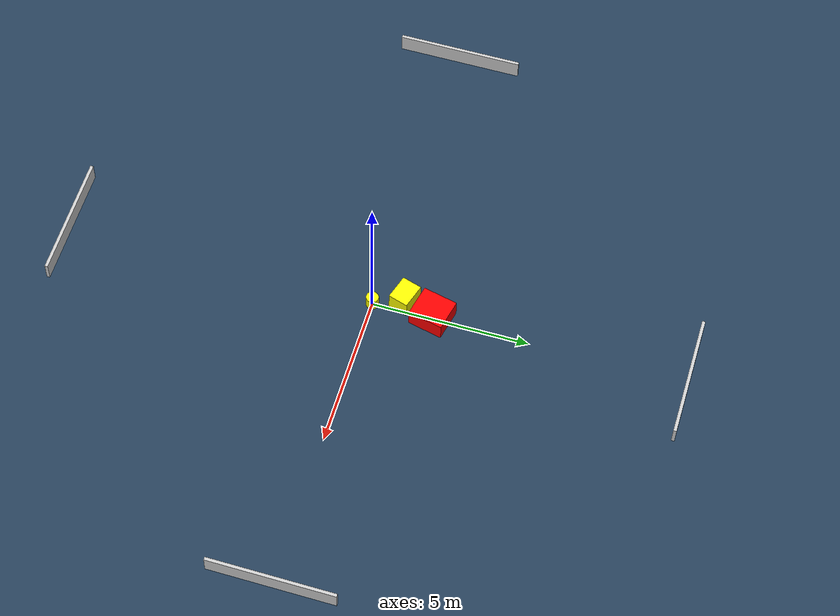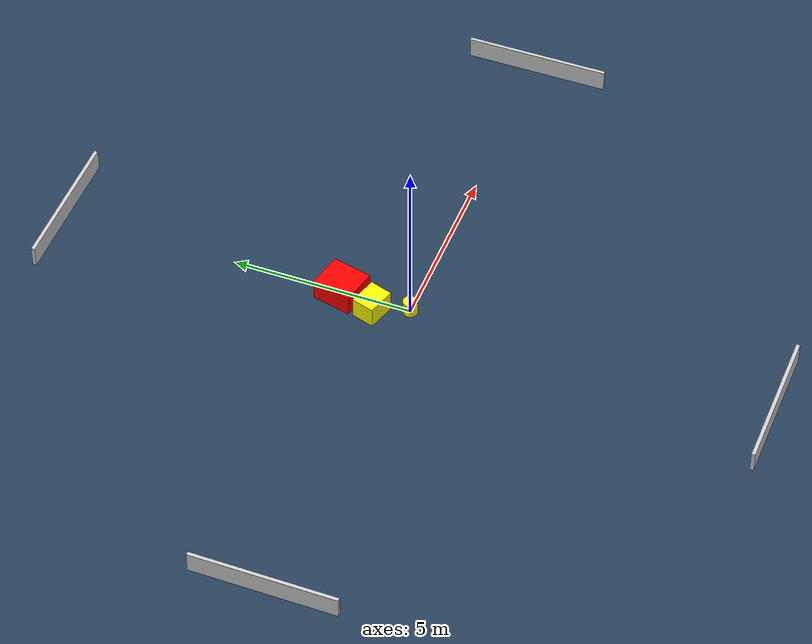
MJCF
<?xml version="1.0" ?>
<mujoco model="generated_environment">
  <option timestep="0.01" integrator="RK4" cone="elliptic"/>
  <default>
    <geom density="1"/>
  </default>
  <asset>
    <texture builtin="gradient" height="3072" name="skybox" rgb1="0.3 0.5 0.7" rgb2="0 0 0" type="skybox" width="512"/>
    <texture builtin="checker" height="300" name="groundplane" rgb1="0.2 0.3 0.4" rgb2="0.1 0.2 0.3" type="2d" width="300"/>
    <material name="groundplane" reflectance="0.2" texrepeat="5 5" texture="groundplane"/>
  </asset>
  <worldbody>
    <light dir="0 0 -1" directional="true" pos="0 0 1.5"/>
    <geom condim="3" friction="0.5 0.005 0.001" material="groundplane" name="floor" pos="0 0 0" size="0 0 0.05" type="plane"/>
    <body name="walls">
      <geom name="wall_1" condim="4" pos="-10.0 0.0 0.3" rgba="0.800000011920929 0.800000011920929 0.800000011920929 1.0" size="0.05 2.0 0.3" type="box"/>
      <geom name="wall_2" condim="4" pos="10.0 0.0 0.3" rgba="0.800000011920929 0.800000011920929 0.800000011920929 1.0" size="0.05 2.0 0.3" type="box"/>
      <geom name="wall_3" condim="4" pos="0.0 -10.0 0.3" rgba="0.800000011920929 0.800000011920929 0.800000011920929 1.0" size="2.0 0.05 0.3" type="box"/>
      <geom name="wall_4" condim="4" pos="0.0 10.0 0.3" rgba="0.800000011920929 0.800000011920929 0.800000011920929 1.0" size="2.0 0.05 0.3" type="box"/>
    </body>
    <body name="robot">
      <joint name="joint_x" type="slide" pos="0 0 0" axis="1 0 0"/>
      <joint name="joint_y" type="slide" pos="0 0 0" axis="0 1 0"/>
      <geom name="robot" type="cylinder" pos="0.0 0.0 0.2" size="0.2 0.2 0.0" mass="5.0" friction="1.0 0.005 0.0001" condim="4" rgba="1.0 1.0 0.0 1.0"/>
    </body>
    <body name="obstacle_1_movable">
      <geom name="obstacle_1_movable" condim="4" pos="-0.3661872040038289 0.9410244937679367 0.3" euler="0 0 162.9199845707278" friction="0.0 0.005 0.001" rgba="1.0 1.0 0.0 1.0" size="0.40475391283734363 0.32262631976182105 0.3" type="box" mass="0.1"/>
      <joint type="free"/>
    </body>
    <body name="obstacle_2_static">
      <geom name="obstacle_2_static" condim="4" pos="-0.05215205504442382 1.9222623044914098 0.3" euler="0 0 167.38393987738468" friction="0.0 0.005 0.001" rgba="1.0 0.0 0.0 1.0" size="0.5075851551553573 0.5609520721015206 0.3" type="box"/>
    </body>
  </worldbody>
  <actuator>
    <motor name="actuator_x" joint="joint_x" gear="1" ctrlrange="-1 1"/>
    <motor name="actuator_y" joint="joint_y" gear="1" ctrlrange="-1 1"/>
  </actuator>
</mujoco>
